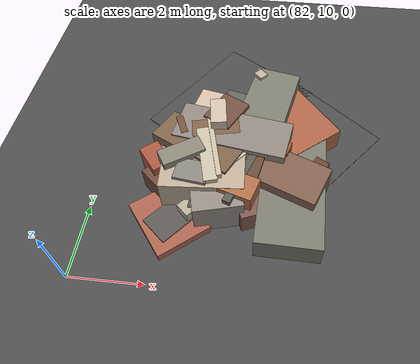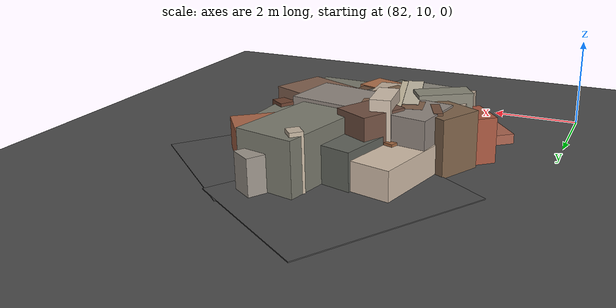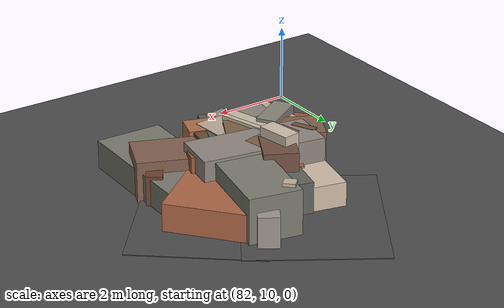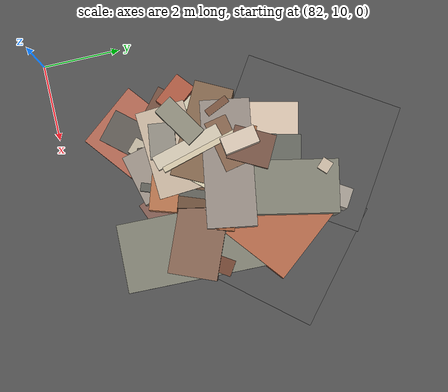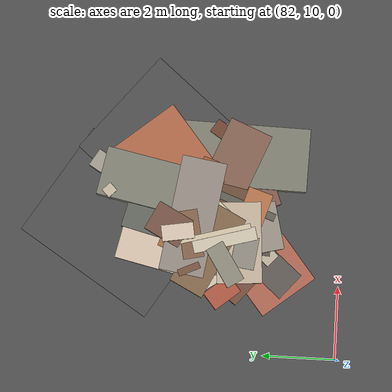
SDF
<sdf version="1.6">
 <world name="navitas_arena">
  <model name="ground_plane">
   <static>true</static>
   <link name="link">
    <collision name="collision">
     <geometry><plane><normal>0 0 1</normal><size>400 400</size></plane></geometry>
     <surface><friction><ode><mu>0.800</mu><mu2>0.800</mu2></ode></friction></surface>
    </collision>
    <visual name="visual">
     <cast_shadows>false</cast_shadows>
     <geometry><plane><normal>0 0 1</normal><size>400 400</size></plane></geometry>
     <material>
      <specular>0.04 0.04 0.04 1</specular>
      <script>
       <uri>file://media/materials/scripts/navitas_asphalt.material</uri>
       <name>Navitas/RealArenaAsphalt</name>
      </script>
     </material>
    </visual>
   </link>
  </model>
  <model name="road_zor_2_15">
   <static>true</static>
   <pose>87.486 14.688 0.040 0 0 2.447</pose>
   <link name="link">
    <collision name="col"><geometry><box><size>3.342 4.200 0.020</size></box></geometry></collision>
    <visual name="vis">
     <geometry><box><size>3.342 4.200 0.020</size></box></geometry>
     <material>
      <specular>0.04 0.04 0.04 1</specular>
      <script>
       <uri>file://media/materials/scripts/navitas_asphalt.material</uri>
       <name>Navitas/RealArenaAsphalt</name>
      </script>
     </material>
    </visual>
   </link>
  </model>
  <model name="road_zor_2_16">
   <static>true</static>
   <pose>85.485 16.153 0.040 0 0 2.570</pose>
   <link name="link">
    <collision name="col"><geometry><box><size>3.428 4.200 0.020</size></box></geometry></collision>
    <visual name="vis">
     <geometry><box><size>3.428 4.200 0.020</size></box></geometry>
     <material>
      <specular>0.04 0.04 0.04 1</specular>
      <script>
       <uri>file://media/materials/scripts/navitas_asphalt.material</uri>
       <name>Navitas/RealArenaAsphalt</name>
      </script>
     </material>
    </visual>
   </link>
  </model>
  <model name="blk_zor_2_3_0">
   <static>true</static>
   <pose>87.273 14.919 0.000 0 0 0</pose>
   <link name="link">
    <collision name="col_0">
     <pose>-0.712 0.218 0.607 0.000 0.000 1.366</pose>
     <geometry><box><size>3.096 1.336 1.214</size></box></geometry>
    </collision>
    <visual name="vis_0">
     <pose>-0.712 0.218 0.607 0.000 0.000 1.366</pose>
     <geometry><box><size>3.096 1.336 1.214</size></box></geometry>
     <material>
      <ambient>0.46 0.46 0.41 1</ambient>
      <diffuse>0.49 0.49 0.44 1</diffuse>
      <specular>0.05 0.05 0.045 1</specular>
     </material>
    </visual>
    <collision name="col_1">
     <pose>-0.949 1.499 0.651 0.000 0.000 2.343</pose>
     <geometry><box><size>0.307 0.281 1.302</size></box></geometry>
    </collision>
    <visual name="vis_1">
     <pose>-0.949 1.499 0.651 0.000 0.000 2.343</pose>
     <geometry><box><size>0.307 0.281 1.302</size></box></geometry>
     <material>
      <ambient>0.71 0.64 0.57 1</ambient>
      <diffuse>0.76 0.70 0.62 1</diffuse>
      <specular>0.05 0.05 0.045 1</specular>
     </material>
    </visual>
    <collision name="col_2">
     <pose>-0.690 1.361 0.455 0.000 0.000 0.785</pose>
     <geometry><box><size>0.387 0.239 0.909</size></box></geometry>
    </collision>
    <visual name="vis_2">
     <pose>-0.690 1.361 0.455 0.000 0.000 0.785</pose>
     <geometry><box><size>0.387 0.239 0.909</size></box></geometry>
     <material>
      <ambient>0.31 0.30 0.27 1</ambient>
      <diffuse>0.33 0.32 0.29 1</diffuse>
      <specular>0.05 0.05 0.045 1</specular>
     </material>
    </visual>
    <collision name="col_3">
     <pose>-0.265 -1.141 0.582 0.000 0.000 2.832</pose>
     <geometry><box><size>0.655 0.438 1.164</size></box></geometry>
    </collision>
    <visual name="vis_3">
     <pose>-0.265 -1.141 0.582 0.000 0.000 2.832</pose>
     <geometry><box><size>0.655 0.438 1.164</size></box></geometry>
     <material>
      <ambient>0.56 0.33 0.21 1</ambient>
      <diffuse>0.61 0.36 0.22 1</diffuse>
      <specular>0.05 0.05 0.045 1</specular>
     </material>
    </visual>
    <collision name="col_4">
     <pose>-0.366 -1.746 0.523 0.000 0.000 2.750</pose>
     <geometry><box><size>2.896 1.234 1.047</size></box></geometry>
    </collision>
    <visual name="vis_4">
     <pose>-0.366 -1.746 0.523 0.000 0.000 2.750</pose>
     <geometry><box><size>2.896 1.234 1.047</size></box></geometry>
     <material>
      <ambient>0.48 0.35 0.28 1</ambient>
      <diffuse>0.51 0.38 0.31 1</diffuse>
      <specular>0.05 0.05 0.045 1</specular>
     </material>
    </visual>
    <collision name="col_5">
     <pose>-1.804 -0.163 0.674 0.000 0.000 1.085</pose>
     <geometry><box><size>1.058 0.851 1.348</size></box></geometry>
    </collision>
    <visual name="vis_5">
     <pose>-1.804 -0.163 0.674 0.000 0.000 1.085</pose>
     <geometry><box><size>1.058 0.851 1.348</size></box></geometry>
     <material>
      <ambient>0.42 0.29 0.24 1</ambient>
      <diffuse>0.45 0.32 0.26 1</diffuse>
      <specular>0.05 0.05 0.045 1</specular>
     </material>
    </visual>
    <collision name="col_6">
     <pose>-0.142 1.802 0.417 0.000 0.000 2.584</pose>
     <geometry><box><size>0.522 0.400 0.834</size></box></geometry>
    </collision>
    <visual name="vis_6">
     <pose>-0.142 1.802 0.417 0.000 0.000 2.584</pose>
     <geometry><box><size>0.522 0.400 0.834</size></box></geometry>
     <material>
      <ambient>0.57 0.55 0.51 1</ambient>
      <diffuse>0.62 0.59 0.55 1</diffuse>
      <specular>0.05 0.05 0.045 1</specular>
     </material>
    </visual>
    <collision name="col_7">
     <pose>-0.683 0.899 0.390 0.000 0.000 2.817</pose>
     <geometry><box><size>0.330 0.584 0.780</size></box></geometry>
    </collision>
    <visual name="vis_7">
     <pose>-0.683 0.899 0.390 0.000 0.000 2.817</pose>
     <geometry><box><size>0.330 0.584 0.780</size></box></geometry>
     <material>
      <ambient>0.49 0.33 0.27 1</ambient>
      <diffuse>0.52 0.36 0.29 1</diffuse>
      <specular>0.05 0.05 0.045 1</specular>
     </material>
    </visual>
   </link>
  </model>
  <model name="blk_zor_2_3_1">
   <static>true</static>
   <pose>85.704 13.367 0.000 0 0 0</pose>
   <link name="link">
    <collision name="col_0">
     <pose>-1.421 0.788 0.649 0.000 0.000 1.996</pose>
     <geometry><box><size>0.627 0.189 1.298</size></box></geometry>
    </collision>
    <visual name="vis_0">
     <pose>-1.421 0.788 0.649 0.000 0.000 1.996</pose>
     <geometry><box><size>0.627 0.189 1.298</size></box></geometry>
     <material>
      <ambient>0.42 0.30 0.23 1</ambient>
      <diffuse>0.46 0.32 0.24 1</diffuse>
      <specular>0.05 0.05 0.045 1</specular>
     </material>
    </visual>
    <collision name="col_1">
     <pose>-2.009 -0.154 0.505 0.000 0.000 0.691</pose>
     <geometry><box><size>0.560 0.860 1.010</size></box></geometry>
    </collision>
    <visual name="vis_1">
     <pose>-2.009 -0.154 0.505 0.000 0.000 0.691</pose>
     <geometry><box><size>0.560 0.860 1.010</size></box></geometry>
     <material>
      <ambient>0.61 0.32 0.23 1</ambient>
      <diffuse>0.66 0.34 0.25 1</diffuse>
      <specular>0.05 0.05 0.045 1</specular>
     </material>
    </visual>
    <collision name="col_2">
     <pose>-0.751 1.018 0.566 0.000 0.000 -0.019</pose>
     <geometry><box><size>1.160 0.490 1.131</size></box></geometry>
    </collision>
    <visual name="vis_2">
     <pose>-0.751 1.018 0.566 0.000 0.000 -0.019</pose>
     <geometry><box><size>1.160 0.490 1.131</size></box></geometry>
     <material>
      <ambient>0.76 0.72 0.63 1</ambient>
      <diffuse>0.82 0.77 0.68 1</diffuse>
      <specular>0.05 0.05 0.045 1</specular>
     </material>
    </visual>
    <collision name="col_3">
     <pose>-0.244 -0.989 0.500 0.000 0.000 0.241</pose>
     <geometry><box><size>1.325 1.335 1.000</size></box></geometry>
    </collision>
    <visual name="vis_3">
     <pose>-0.244 -0.989 0.500 0.000 0.000 0.241</pose>
     <geometry><box><size>1.325 1.335 1.000</size></box></geometry>
     <material>
      <ambient>0.55 0.51 0.47 1</ambient>
      <diffuse>0.59 0.55 0.51 1</diffuse>
      <specular>0.05 0.05 0.045 1</specular>
     </material>
    </visual>
    <collision name="col_4">
     <pose>-0.471 0.796 0.645 0.000 0.000 0.203</pose>
     <geometry><box><size>1.313 0.575 1.291</size></box></geometry>
    </collision>
    <visual name="vis_4">
     <pose>-0.471 0.796 0.645 0.000 0.000 0.203</pose>
     <geometry><box><size>1.313 0.575 1.291</size></box></geometry>
     <material>
      <ambient>0.47 0.35 0.27 1</ambient>
      <diffuse>0.51 0.38 0.29 1</diffuse>
      <specular>0.05 0.05 0.045 1</specular>
     </material>
    </visual>
    <collision name="col_5">
     <pose>-0.110 -1.369 0.282 0.000 0.000 -0.070</pose>
     <geometry><box><size>1.675 0.207 0.565</size></box></geometry>
    </collision>
    <visual name="vis_5">
     <pose>-0.110 -1.369 0.282 0.000 0.000 -0.070</pose>
     <geometry><box><size>1.675 0.207 0.565</size></box></geometry>
     <material>
      <ambient>0.32 0.29 0.26 1</ambient>
      <diffuse>0.34 0.32 0.28 1</diffuse>
      <specular>0.05 0.05 0.045 1</specular>
     </material>
    </visual>
    <collision name="col_6">
     <pose>0.017 0.748 0.645 0.000 0.000 -0.162</pose>
     <geometry><box><size>3.178 1.238 1.289</size></box></geometry>
    </collision>
    <visual name="vis_6">
     <pose>0.017 0.748 0.645 0.000 0.000 -0.162</pose>
     <geometry><box><size>3.178 1.238 1.289</size></box></geometry>
     <material>
      <ambient>0.53 0.49 0.47 1</ambient>
      <diffuse>0.57 0.53 0.50 1</diffuse>
      <specular>0.05 0.05 0.045 1</specular>
     </material>
    </visual>
    <collision name="col_7">
     <pose>0.709 -0.568 0.331 0.000 0.000 1.954</pose>
     <geometry><box><size>1.886 1.214 0.662</size></box></geometry>
    </collision>
    <visual name="vis_7">
     <pose>0.709 -0.568 0.331 0.000 0.000 1.954</pose>
     <geometry><box><size>1.886 1.214 0.662</size></box></geometry>
     <material>
      <ambient>0.45 0.33 0.29 1</ambient>
      <diffuse>0.49 0.35 0.31 1</diffuse>
      <specular>0.05 0.05 0.045 1</specular>
     </material>
    </visual>
    <collision name="col_8">
     <pose>-0.585 -0.148 0.651 0.000 0.000 1.836</pose>
     <geometry><box><size>1.775 0.367 1.302</size></box></geometry>
    </collision>
    <visual name="vis_8">
     <pose>-0.585 -0.148 0.651 0.000 0.000 1.836</pose>
     <geometry><box><size>1.775 0.367 1.302</size></box></geometry>
     <material>
      <ambient>0.73 0.69 0.62 1</ambient>
      <diffuse>0.79 0.75 0.67 1</diffuse>
      <specular>0.05 0.05 0.045 1</specular>
     </material>
    </visual>
    <collision name="col_9">
     <pose>1.766 -0.539 0.371 0.000 0.000 1.545</pose>
     <geometry><box><size>3.633 1.731 0.742</size></box></geometry>
    </collision>
    <visual name="vis_9">
     <pose>1.766 -0.539 0.371 0.000 0.000 1.545</pose>
     <geometry><box><size>3.633 1.731 0.742</size></box></geometry>
     <material>
      <ambient>0.45 0.44 0.40 1</ambient>
      <diffuse>0.48 0.48 0.43 1</diffuse>
      <specular>0.05 0.05 0.045 1</specular>
     </material>
    </visual>
   </link>
  </model>
  <model name="blk_zor_2_3_2">
   <static>true</static>
   <pose>85.369 13.390 0.000 0 0 0</pose>
   <link name="link">
    <collision name="col_0">
     <pose>1.197 0.260 0.636 0.000 0.000 2.425</pose>
     <geometry><box><size>0.674 0.336 1.272</size></box></geometry>
    </collision>
    <visual name="vis_0">
     <pose>1.197 0.260 0.636 0.000 0.000 2.425</pose>
     <geometry><box><size>0.674 0.336 1.272</size></box></geometry>
     <material>
      <ambient>0.76 0.67 0.62 1</ambient>
      <diffuse>0.82 0.73 0.67 1</diffuse>
      <specular>0.05 0.05 0.045 1</specular>
     </material>
    </visual>
    <collision name="col_1">
     <pose>-0.549 -0.739 0.630 0.000 0.000 1.436</pose>
     <geometry><box><size>0.647 0.890 1.260</size></box></geometry>
    </collision>
    <visual name="vis_1">
     <pose>-0.549 -0.739 0.630 0.000 0.000 1.436</pose>
     <geometry><box><size>0.647 0.890 1.260</size></box></geometry>
     <material>
      <ambient>0.51 0.49 0.45 1</ambient>
      <diffuse>0.55 0.53 0.49 1</diffuse>
      <specular>0.05 0.05 0.045 1</specular>
     </material>
    </visual>
    <collision name="col_2">
     <pose>0.445 0.896 0.430 0.000 0.000 1.322</pose>
     <geometry><box><size>3.245 1.711 0.860</size></box></geometry>
    </collision>
    <visual name="vis_2">
     <pose>0.445 0.896 0.430 0.000 0.000 1.322</pose>
     <geometry><box><size>3.245 1.711 0.860</size></box></geometry>
     <material>
      <ambient>0.35 0.36 0.33 1</ambient>
      <diffuse>0.38 0.39 0.36 1</diffuse>
      <specular>0.05 0.05 0.045 1</specular>
     </material>
    </visual>
    <collision name="col_3">
     <pose>-0.884 0.396 0.461 0.000 0.000 3.769</pose>
     <geometry><box><size>1.370 1.011 0.923</size></box></geometry>
    </collision>
    <visual name="vis_3">
     <pose>-0.884 0.396 0.461 0.000 0.000 3.769</pose>
     <geometry><box><size>1.370 1.011 0.923</size></box></geometry>
     <material>
      <ambient>0.72 0.69 0.61 1</ambient>
      <diffuse>0.78 0.75 0.66 1</diffuse>
      <specular>0.05 0.05 0.045 1</specular>
     </material>
    </visual>
    <collision name="col_4">
     <pose>-0.302 -0.564 0.581 0.000 0.000 3.206</pose>
     <geometry><box><size>2.223 1.241 1.162</size></box></geometry>
    </collision>
    <visual name="vis_4">
     <pose>-0.302 -0.564 0.581 0.000 0.000 3.206</pose>
     <geometry><box><size>2.223 1.241 1.162</size></box></geometry>
     <material>
      <ambient>0.69 0.63 0.55 1</ambient>
      <diffuse>0.75 0.68 0.60 1</diffuse>
      <specular>0.05 0.05 0.045 1</specular>
     </material>
    </visual>
    <collision name="col_5">
     <pose>0.523 -0.912 0.577 0.000 0.000 1.261</pose>
     <geometry><box><size>0.697 1.300 1.153</size></box></geometry>
    </collision>
    <visual name="vis_5">
     <pose>0.523 -0.912 0.577 0.000 0.000 1.261</pose>
     <geometry><box><size>0.697 1.300 1.153</size></box></geometry>
     <material>
      <ambient>0.63 0.41 0.26 1</ambient>
      <diffuse>0.69 0.44 0.29 1</diffuse>
      <specular>0.05 0.05 0.045 1</specular>
     </material>
    </visual>
    <collision name="col_6">
     <pose>0.170 0.763 0.558 0.000 0.000 2.569</pose>
     <geometry><box><size>0.539 0.280 1.115</size></box></geometry>
    </collision>
    <visual name="vis_6">
     <pose>0.170 0.763 0.558 0.000 0.000 2.569</pose>
     <geometry><box><size>0.539 0.280 1.115</size></box></geometry>
     <material>
      <ambient>0.33 0.30 0.28 1</ambient>
      <diffuse>0.35 0.32 0.30 1</diffuse>
      <specular>0.05 0.05 0.045 1</specular>
     </material>
    </visual>
    <collision name="col_7">
     <pose>0.710 -0.741 0.571 0.000 0.000 1.218</pose>
     <geometry><box><size>1.646 0.209 1.142</size></box></geometry>
    </collision>
    <visual name="vis_7">
     <pose>0.710 -0.741 0.571 0.000 0.000 1.218</pose>
     <geometry><box><size>1.646 0.209 1.142</size></box></geometry>
     <material>
      <ambient>0.34 0.33 0.31 1</ambient>
      <diffuse>0.36 0.36 0.33 1</diffuse>
      <specular>0.05 0.05 0.045 1</specular>
     </material>
    </visual>
   </link>
  </model>
  <model name="blk_zor_2_3_4">
   <static>true</static>
   <pose>86.944 14.073 0.000 0 0 0</pose>
   <link name="link">
    <collision name="col_0">
     <pose>-1.377 -1.209 0.275 0.000 0.000 0.823</pose>
     <geometry><box><size>2.780 0.433 0.550</size></box></geometry>
    </collision>
    <visual name="vis_0">
     <pose>-1.377 -1.209 0.275 0.000 0.000 0.823</pose>
     <geometry><box><size>2.780 0.433 0.550</size></box></geometry>
     <material>
      <ambient>0.67 0.63 0.56 1</ambient>
      <diffuse>0.72 0.68 0.60 1</diffuse>
      <specular>0.05 0.05 0.045 1</specular>
     </material>
    </visual>
    <collision name="col_1">
     <pose>0.493 0.952 0.380 0.000 0.000 0.681</pose>
     <geometry><box><size>1.830 2.036 0.760</size></box></geometry>
    </collision>
    <visual name="vis_1">
     <pose>0.493 0.952 0.380 0.000 0.000 0.681</pose>
     <geometry><box><size>1.830 2.036 0.760</size></box></geometry>
     <material>
      <ambient>0.63 0.37 0.26 1</ambient>
      <diffuse>0.68 0.40 0.28 1</diffuse>
      <specular>0.05 0.05 0.045 1</specular>
     </material>
    </visual>
    <collision name="col_2">
     <pose>0.934 -1.038 0.411 0.000 0.000 0.992</pose>
     <geometry><box><size>1.456 0.413 0.821</size></box></geometry>
    </collision>
    <visual name="vis_2">
     <pose>0.934 -1.038 0.411 0.000 0.000 0.992</pose>
     <geometry><box><size>1.456 0.413 0.821</size></box></geometry>
     <material>
      <ambient>0.40 0.24 0.17 1</ambient>
      <diffuse>0.43 0.26 0.19 1</diffuse>
      <specular>0.05 0.05 0.045 1</specular>
     </material>
    </visual>
    <collision name="col_3">
     <pose>-1.199 -0.742 0.397 0.000 0.000 2.679</pose>
     <geometry><box><size>0.578 0.339 0.794</size></box></geometry>
    </collision>
    <visual name="vis_3">
     <pose>-1.199 -0.742 0.397 0.000 0.000 2.679</pose>
     <geometry><box><size>0.578 0.339 0.794</size></box></geometry>
     <material>
      <ambient>0.37 0.34 0.33 1</ambient>
      <diffuse>0.40 0.37 0.35 1</diffuse>
      <specular>0.05 0.05 0.045 1</specular>
     </material>
    </visual>
    <collision name="col_4">
     <pose>0.059 0.062 0.608 0.000 0.000 3.097</pose>
     <geometry><box><size>0.277 0.322 1.217</size></box></geometry>
    </collision>
    <visual name="vis_4">
     <pose>0.059 0.062 0.608 0.000 0.000 3.097</pose>
     <geometry><box><size>0.277 0.322 1.217</size></box></geometry>
     <material>
      <ambient>0.46 0.34 0.25 1</ambient>
      <diffuse>0.50 0.37 0.27 1</diffuse>
      <specular>0.05 0.05 0.045 1</specular>
     </material>
    </visual>
    <collision name="col_5">
     <pose>1.035 0.221 0.286 0.000 0.000 1.278</pose>
     <geometry><box><size>0.375 0.388 0.573</size></box></geometry>
    </collision>
    <visual name="vis_5">
     <pose>1.035 0.221 0.286 0.000 0.000 1.278</pose>
     <geometry><box><size>0.375 0.388 0.573</size></box></geometry>
     <material>
      <ambient>0.69 0.63 0.56 1</ambient>
      <diffuse>0.74 0.68 0.60 1</diffuse>
      <specular>0.05 0.05 0.045 1</specular>
     </material>
    </visual>
    <collision name="col_6">
     <pose>-0.101 0.428 0.285 0.000 0.000 1.190</pose>
     <geometry><box><size>2.653 1.272 0.570</size></box></geometry>
    </collision>
    <visual name="vis_6">
     <pose>-0.101 0.428 0.285 0.000 0.000 1.190</pose>
     <geometry><box><size>2.653 1.272 0.570</size></box></geometry>
     <material>
      <ambient>0.48 0.35 0.26 1</ambient>
      <diffuse>0.51 0.37 0.28 1</diffuse>
      <specular>0.05 0.05 0.045 1</specular>
     </material>
    </visual>
    <collision name="col_7">
     <pose>-1.671 0.433 0.797 0.000 0.000 1.729</pose>
     <geometry><box><size>0.881 0.439 1.595</size></box></geometry>
    </collision>
    <visual name="vis_7">
     <pose>-1.671 0.433 0.797 0.000 0.000 1.729</pose>
     <geometry><box><size>0.881 0.439 1.595</size></box></geometry>
     <material>
      <ambient>0.76 0.69 0.63 1</ambient>
      <diffuse>0.82 0.75 0.68 1</diffuse>
      <specular>0.05 0.05 0.045 1</specular>
     </material>
    </visual>
   </link>
  </model>
  <model name="blk_zor_2_3_5">
   <static>true</static>
   <pose>85.257 13.788 0.000 0 0 0</pose>
   <link name="link">
    <collision name="col_0">
     <pose>0.584 -0.255 0.567 0.000 0.000 1.372</pose>
     <geometry><box><size>2.465 1.689 1.134</size></box></geometry>
    </collision>
    <visual name="vis_0">
     <pose>0.584 -0.255 0.567 0.000 0.000 1.372</pose>
     <geometry><box><size>2.465 1.689 1.134</size></box></geometry>
     <material>
      <ambient>0.38 0.28 0.20 1</ambient>
      <diffuse>0.41 0.30 0.22 1</diffuse>
      <specular>0.05 0.05 0.045 1</specular>
     </material>
    </visual>
    <collision name="col_1">
     <pose>0.636 -0.411 0.596 0.000 0.000 0.849</pose>
     <geometry><box><size>1.387 0.398 1.192</size></box></geometry>
    </collision>
    <visual name="vis_1">
     <pose>0.636 -0.411 0.596 0.000 0.000 0.849</pose>
     <geometry><box><size>1.387 0.398 1.192</size></box></geometry>
     <material>
      <ambient>0.74 0.71 0.61 1</ambient>
      <diffuse>0.80 0.77 0.66 1</diffuse>
      <specular>0.05 0.05 0.045 1</specular>
     </material>
    </visual>
    <collision name="col_2">
     <pose>0.014 -0.259 0.663 0.000 0.000 1.839</pose>
     <geometry><box><size>2.071 0.140 1.326</size></box></geometry>
    </collision>
    <visual name="vis_2">
     <pose>0.014 -0.259 0.663 0.000 0.000 1.839</pose>
     <geometry><box><size>2.071 0.140 1.326</size></box></geometry>
     <material>
      <ambient>0.74 0.70 0.60 1</ambient>
      <diffuse>0.80 0.75 0.64 1</diffuse>
      <specular>0.05 0.05 0.045 1</specular>
     </material>
    </visual>
    <collision name="col_3">
     <pose>-0.267 0.672 0.507 0.000 0.000 1.860</pose>
     <geometry><box><size>0.454 0.430 1.014</size></box></geometry>
    </collision>
    <visual name="vis_3">
     <pose>-0.267 0.672 0.507 0.000 0.000 1.860</pose>
     <geometry><box><size>0.454 0.430 1.014</size></box></geometry>
     <material>
      <ambient>0.60 0.36 0.25 1</ambient>
      <diffuse>0.65 0.39 0.27 1</diffuse>
      <specular>0.05 0.05 0.045 1</specular>
     </material>
    </visual>
    <collision name="col_4">
     <pose>-0.637 0.518 0.340 0.000 0.000 1.347</pose>
     <geometry><box><size>3.663 1.039 0.681</size></box></geometry>
    </collision>
    <visual name="vis_4">
     <pose>-0.637 0.518 0.340 0.000 0.000 1.347</pose>
     <geometry><box><size>3.663 1.039 0.681</size></box></geometry>
     <material>
      <ambient>0.76 0.68 0.61 1</ambient>
      <diffuse>0.82 0.74 0.66 1</diffuse>
      <specular>0.05 0.05 0.045 1</specular>
     </material>
    </visual>
    <collision name="col_5">
     <pose>-0.803 -0.611 0.692 0.000 0.000 0.568</pose>
     <geometry><box><size>1.184 0.523 1.384</size></box></geometry>
    </collision>
    <visual name="vis_5">
     <pose>-0.803 -0.611 0.692 0.000 0.000 0.568</pose>
     <geometry><box><size>1.184 0.523 1.384</size></box></geometry>
     <material>
      <ambient>0.50 0.49 0.44 1</ambient>
      <diffuse>0.54 0.53 0.47 1</diffuse>
      <specular>0.05 0.05 0.045 1</specular>
     </material>
    </visual>
    <collision name="col_6">
     <pose>-0.067 -0.014 0.369 0.000 0.000 1.226</pose>
     <geometry><box><size>2.200 1.395 0.738</size></box></geometry>
    </collision>
    <visual name="vis_6">
     <pose>-0.067 -0.014 0.369 0.000 0.000 1.226</pose>
     <geometry><box><size>2.200 1.395 0.738</size></box></geometry>
     <material>
      <ambient>0.59 0.38 0.24 1</ambient>
      <diffuse>0.64 0.41 0.26 1</diffuse>
      <specular>0.05 0.05 0.045 1</specular>
     </material>
    </visual>
    <collision name="col_7">
     <pose>-0.431 -0.132 0.623 0.000 0.000 -0.476</pose>
     <geometry><box><size>2.436 0.997 1.246</size></box></geometry>
    </collision>
    <visual name="vis_7">
     <pose>-0.431 -0.132 0.623 0.000 0.000 -0.476</pose>
     <geometry><box><size>2.436 0.997 1.246</size></box></geometry>
     <material>
      <ambient>0.46 0.36 0.26 1</ambient>
      <diffuse>0.50 0.39 0.29 1</diffuse>
      <specular>0.05 0.05 0.045 1</specular>
     </material>
    </visual>
   </link>
  </model>
  <model name="deb_zor_363">
   <static>true</static>
   <pose>83.990 12.841 0.000 0 0 0</pose>
   <link name="link">
    <collision name="col_0">
     <pose>0.265 -1.008 0.115 0.000 0.000 0.672</pose>
     <geometry><box><size>1.540 1.781 0.231</size></box></geometry>
    </collision>
    <visual name="vis_0">
     <pose>0.265 -1.008 0.115 0.000 0.000 0.672</pose>
     <geometry><box><size>1.540 1.781 0.231</size></box></geometry>
     <material>
      <ambient>0.62 0.37 0.29 1</ambient>
      <diffuse>0.67 0.39 0.31 1</diffuse>
      <specular>0.05 0.05 0.045 1</specular>
     </material>
    </visual>
    <collision name="col_1">
     <pose>-0.107 -0.039 0.374 0.000 0.000 2.435</pose>
     <geometry><box><size>0.840 0.640 0.748</size></box></geometry>
    </collision>
    <visual name="vis_1">
     <pose>-0.107 -0.039 0.374 0.000 0.000 2.435</pose>
     <geometry><box><size>0.840 0.640 0.748</size></box></geometry>
     <material>
      <ambient>0.41 0.28 0.23 1</ambient>
      <diffuse>0.44 0.30 0.24 1</diffuse>
      <specular>0.05 0.05 0.045 1</specular>
     </material>
    </visual>
    <collision name="col_2">
     <pose>0.415 0.695 0.548 0.000 0.000 0.162</pose>
     <geometry><box><size>0.525 0.403 1.096</size></box></geometry>
    </collision>
    <visual name="vis_2">
     <pose>0.415 0.695 0.548 0.000 0.000 0.162</pose>
     <geometry><box><size>0.525 0.403 1.096</size></box></geometry>
     <material>
      <ambient>0.44 0.42 0.38 1</ambient>
      <diffuse>0.47 0.45 0.41 1</diffuse>
      <specular>0.05 0.05 0.045 1</specular>
     </material>
    </visual>
    <collision name="col_3">
     <pose>1.203 0.076 0.098 0.000 0.000 2.605</pose>
     <geometry><box><size>1.350 0.137 0.197</size></box></geometry>
    </collision>
    <visual name="vis_3">
     <pose>1.203 0.076 0.098 0.000 0.000 2.605</pose>
     <geometry><box><size>1.350 0.137 0.197</size></box></geometry>
     <material>
      <ambient>0.42 0.43 0.40 1</ambient>
      <diffuse>0.46 0.46 0.43 1</diffuse>
      <specular>0.05 0.05 0.045 1</specular>
     </material>
    </visual>
    <collision name="col_4">
     <pose>0.695 -0.642 0.131 0.000 0.000 0.862</pose>
     <geometry><box><size>2.309 0.881 0.263</size></box></geometry>
    </collision>
    <visual name="vis_4">
     <pose>0.695 -0.642 0.131 0.000 0.000 0.862</pose>
     <geometry><box><size>2.309 0.881 0.263</size></box></geometry>
     <material>
      <ambient>0.34 0.31 0.30 1</ambient>
      <diffuse>0.36 0.34 0.32 1</diffuse>
      <specular>0.05 0.05 0.045 1</specular>
     </material>
    </visual>
   </link>
  </model>
 </world>
</sdf>
